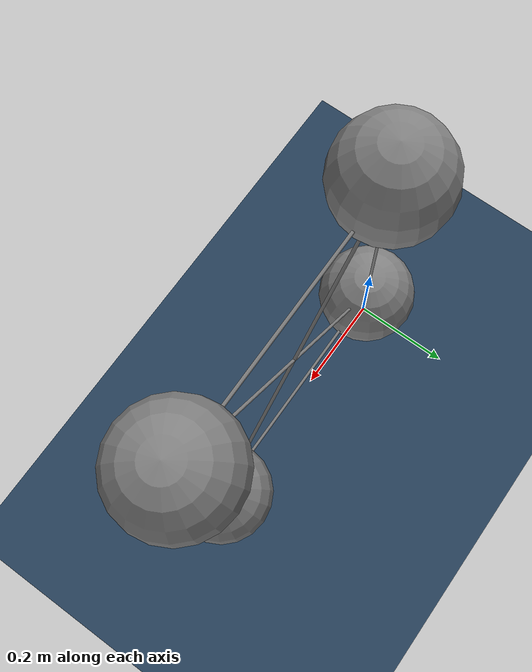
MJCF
<mujoco model="cell_scene">
    <include file="cell.xml"/>

    <visual>
        <global offheight="720" offwidth="1280"/>
    </visual>

    <option timestep="0.05" gravity="0 0 -9.81"/>

    <asset>
        <texture type="skybox" builtin="gradient" rgb1="0.6 0.7 0.9" rgb2="0.3 0.3 0.4" width="512" height="3072"/>
        <texture type="2d" name="groundplane" builtin="checker" mark="edge" rgb1="0.2 0.3 0.4" rgb2="0.1 0.2 0.3" markrgb="0.8 0.8 0.8" width="300" height="300"/>
        <material name="groundplane" texture="groundplane" texuniform="true" texrepeat="5 5" reflectance="0.2"/>
    </asset>

    <worldbody>
        <light name="global_light" directional="true" diffuse="1 1 1" specular="0.3 0.3 0.3" castshadow="false"/>
        <light name="fill_light_0" pos="-5 0 10" dir="0 0 -1" directional="false" diffuse="1 1 1" specular="0.2 0.2 0.2"/>
        <light name="fill_light_1" pos="0 0 10" dir="0 0 -1" directional="false" diffuse="1 1 1" specular="0.2 0.2 0.2"/>
        <light name="fill_light_2" pos="5 0 10" dir="0 0 -1" directional="false" diffuse="1 1 1" specular="0.2 0.2 0.2"/>

        <geom name="floor" pos="0 0 0" size="0 0 0.05" type="plane" material="groundplane" contype="2" conaffinity="1"/>

    </worldbody>
</mujoco>

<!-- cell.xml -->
<mujoco model="cell">
    <worldbody>

        <body name="body_cell:0" pos="0.0 0 0.1">
            <joint name="x_joint_cell:0" type="slide" axis="1 0 0"/>
            <joint name="z_joint_cell:0" type="slide" axis="0 0 1"/>
            <geom name="cell:0" type="sphere" size="0.1" mass="1" contype="1" conaffinity="2"/>
            <site name="site_cell:0" pos="0 0 0" size="0.01"/>
        </body>

        <body name="body_cell:1" pos="0.5 0 0.1">
            <joint name="x_joint_cell:1" type="slide" axis="1 0 0"/>
            <joint name="z_joint_cell:1" type="slide" axis="0 0 1"/>
            <geom name="cell:1" type="sphere" size="0.1" mass="1" contype="1" conaffinity="2"/>
            <site name="site_cell:1" pos="0 0 0" size="0.01"/>
        </body>

        <body name="body_cell:2" pos="0.0 0 0.6">
            <joint name="x_joint_cell:2" type="slide" axis="1 0 0"/>
            <joint name="z_joint_cell:2" type="slide" axis="0 0 1"/>
            <geom name="cell:2" type="sphere" size="0.1" mass="1" contype="1" conaffinity="2"/>
            <site name="site_cell:2" pos="0 0 0" size="0.01"/>
        </body>

        <body name="body_cell:3" pos="0.5 0 0.6">
            <joint name="x_joint_cell:3" type="slide" axis="1 0 0"/>
            <joint name="z_joint_cell:3" type="slide" axis="0 0 1"/>
            <geom name="cell:3" type="sphere" size="0.1" mass="1" contype="1" conaffinity="2"/>
            <site name="site_cell:3" pos="0 0 0" size="0.01"/>
        </body>
    </worldbody>

    <tendon>
        <spatial name="spring_0_1" stiffness="150" damping="1" springlength="0.5">
            <site site="site_cell:0"/>
            <site site="site_cell:1"/>
        </spatial>

        <spatial name="spring_0_2" stiffness="150" damping="1" springlength="0.5">
            <site site="site_cell:0"/>
            <site site="site_cell:2"/>
        </spatial>

        <spatial name="spring_2_3" stiffness="150" damping="1" springlength="0.5">
            <site site="site_cell:2"/>
            <site site="site_cell:3"/>
        </spatial>

        <spatial name="spring_3_1" stiffness="150" damping="1" springlength="0.5">
            <site site="site_cell:3"/>
            <site site="site_cell:1"/>
        </spatial>

        <spatial name="spring_1_2" stiffness="150" damping="1" springlength="0.707">
            <site site="site_cell:1"/>
            <site site="site_cell:2"/>
        </spatial>

        <spatial name="spring_3_0" stiffness="150" damping="1" springlength="0.707">
            <site site="site_cell:3"/>
            <site site="site_cell:0"/>
        </spatial>
    </tendon>

    <actuator>
        <motor joint="x_joint_cell:0" ctrlrange="-1 1" gear="2"/>
        <motor joint="z_joint_cell:0" ctrlrange="-1 1" gear="2"/>

        <motor joint="x_joint_cell:1" ctrlrange="-1 1" gear="2"/>
        <motor joint="z_joint_cell:1" ctrlrange="-1 1" gear="2"/>

        <motor joint="x_joint_cell:2" ctrlrange="-1 1" gear="2"/>
        <motor joint="z_joint_cell:2" ctrlrange="-1 1" gear="2"/>

        <motor joint="x_joint_cell:3" ctrlrange="-1 1" gear="2"/>
        <motor joint="z_joint_cell:3" ctrlrange="-1 1" gear="2"/>
    </actuator>
</mujoco>
